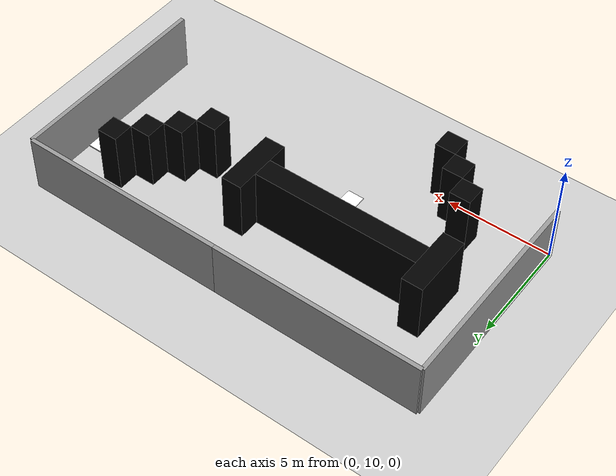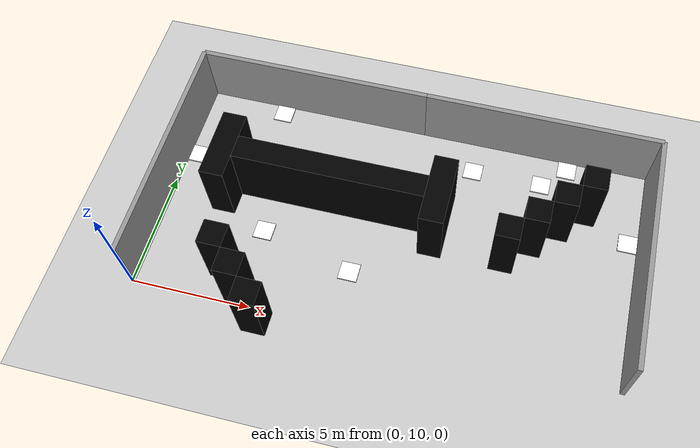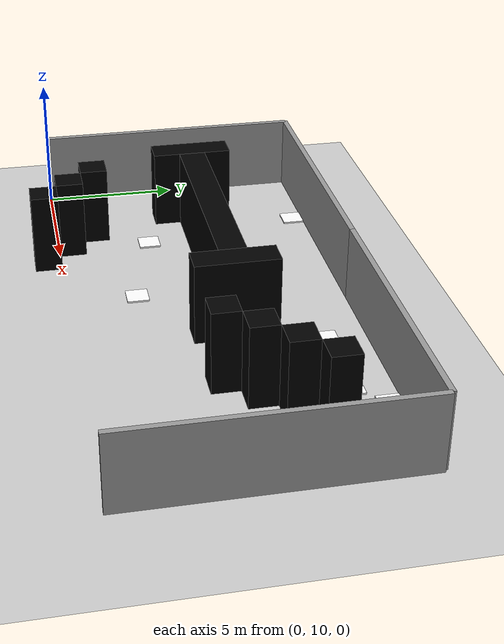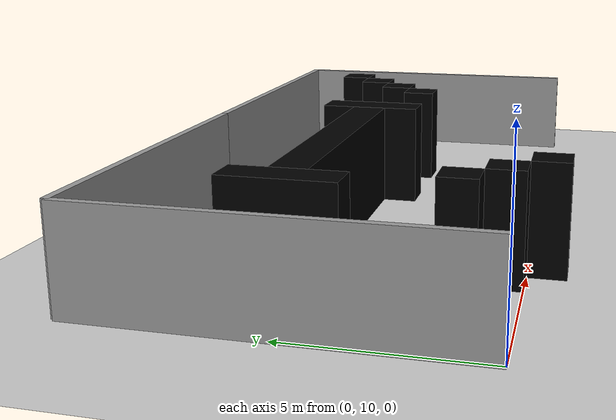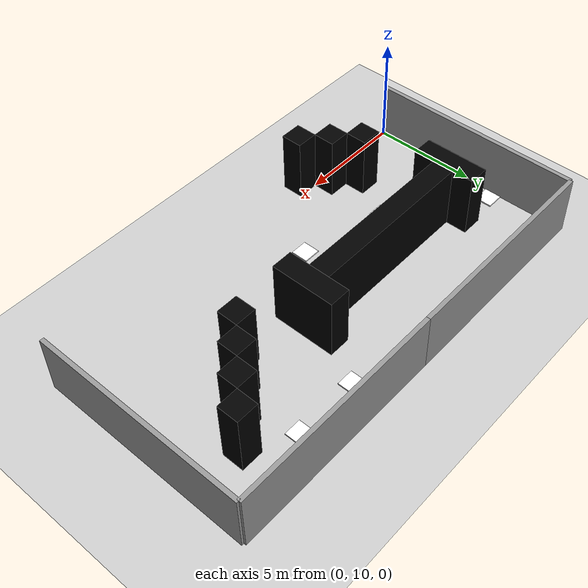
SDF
<sdf version="1.7">
 <world name="default">
  <model name="ground_plane">
   <static>1</static>
   <link name="link">
    <collision name="collision">
     <geometry><plane><normal>0 0 1</normal><size>100 100</size></plane></geometry>
     <surface><friction><ode><mu>100</mu><mu2>50</mu2></ode></friction></surface>
    </collision>
    <visual name="visual">
     <cast_shadows>0</cast_shadows>
     <geometry><plane><normal>0 0 1</normal><size>100 100</size></plane></geometry>
     <material>
      <script><uri>file://media/materials/scripts/gazebo.material</uri><name>Gazebo/Grey</name></script>
     </material>
    </visual>
   </link>
  </model>
  <model name="grey_wall_10_0">
   <link name="link">
    <pose>0 0 1.4 0 -0 0</pose>
    <inertial>
     <mass>1</mass>
     <inertia><ixx>1</ixx><ixy>0</ixy><ixz>0</ixz><iyy>1</iyy><iyz>0</iyz><izz>1</izz></inertia>
    </inertial>
    <visual name="visual">
     <cast_shadows>0</cast_shadows>
     <geometry><box><size>10 0.2 2.8</size></box></geometry>
     <material>
      <script>
       <uri>model://grey_wall/materials/scripts</uri>
       <uri>model://grey_wall/materials/textures</uri>
       <name>vrc/grey_wall</name>
      </script>
      <shader type="vertex"><normal_map>__default__</normal_map></shader>
      <ambient>1 1 1 1</ambient>
      <diffuse>1 1 1 1</diffuse>
      <specular>0 0 0 1</specular>
      <emissive>0 0 0 1</emissive>
     </material>
    </visual>
    <collision name="collision">
     <geometry><box><size>10 0.2 2.8</size></box></geometry>
     <surface>
      <friction>
       <ode><mu>1</mu><mu2>1</mu2><fdir1>0 0 0</fdir1><slip1>0</slip1><slip2>0</slip2></ode>
       <torsional>
        <coefficient>1</coefficient>
        <patch_radius>0</patch_radius>
        <surface_radius>0</surface_radius>
        <use_patch_radius>1</use_patch_radius>
        <ode><slip>0</slip></ode>
       </torsional>
      </friction>
      <bounce><restitution_coefficient>0</restitution_coefficient><threshold>1e+06</threshold></bounce>
      <contact>
       <collide_without_contact>0</collide_without_contact>
       <collide_without_contact_bitmask>1</collide_without_contact_bitmask>
       <collide_bitmask>1</collide_bitmask>
       <ode>
        <soft_cfm>0</soft_cfm>
        <soft_erp>0.2</soft_erp>
        <kp>1e+13</kp>
        <kd>1</kd>
        <max_vel>0.01</max_vel>
        <min_depth>0</min_depth>
       </ode>
       <bullet>
        <split_impulse>1</split_impulse>
        <split_impulse_penetration_threshold>-0.01</split_impulse_penetration_threshold>
        <soft_cfm>0</soft_cfm>
        <soft_erp>0.2</soft_erp>
        <kp>1e+13</kp>
        <kd>1</kd>
       </bullet>
      </contact>
     </surface>
    </collision>
   </link>
   <static>1</static>
   <pose>15 20 0 0 -0 0</pose>
  </model>
  <model name="grey_wall_10_4">
   <link name="link">
    <pose>0 0 1.4 0 -0 0</pose>
    <inertial>
     <mass>1</mass>
     <inertia><ixx>1</ixx><ixy>0</ixy><ixz>0</ixz><iyy>1</iyy><iyz>0</iyz><izz>1</izz></inertia>
    </inertial>
    <visual name="visual">
     <cast_shadows>0</cast_shadows>
     <geometry><box><size>10 0.2 2.8</size></box></geometry>
     <material>
      <script>
       <uri>model://grey_wall/materials/scripts</uri>
       <uri>model://grey_wall/materials/textures</uri>
       <name>vrc/grey_wall</name>
      </script>
      <shader type="vertex"><normal_map>__default__</normal_map></shader>
      <ambient>1 1 1 1</ambient>
      <diffuse>1 1 1 1</diffuse>
      <specular>0 0 0 1</specular>
      <emissive>0 0 0 1</emissive>
     </material>
    </visual>
    <collision name="collision">
     <geometry><box><size>10 0.2 2.8</size></box></geometry>
     <surface>
      <friction>
       <ode><mu>1</mu><mu2>1</mu2><fdir1>0 0 0</fdir1><slip1>0</slip1><slip2>0</slip2></ode>
       <torsional>
        <coefficient>1</coefficient>
        <patch_radius>0</patch_radius>
        <surface_radius>0</surface_radius>
        <use_patch_radius>1</use_patch_radius>
        <ode><slip>0</slip></ode>
       </torsional>
      </friction>
      <bounce><restitution_coefficient>0</restitution_coefficient><threshold>1e+06</threshold></bounce>
      <contact>
       <collide_without_contact>0</collide_without_contact>
       <collide_without_contact_bitmask>1</collide_without_contact_bitmask>
       <collide_bitmask>1</collide_bitmask>
       <ode>
        <soft_cfm>0</soft_cfm>
        <soft_erp>0.2</soft_erp>
        <kp>1e+13</kp>
        <kd>1</kd>
        <max_vel>0.01</max_vel>
        <min_depth>0</min_depth>
       </ode>
       <bullet>
        <split_impulse>1</split_impulse>
        <split_impulse_penetration_threshold>-0.01</split_impulse_penetration_threshold>
        <soft_cfm>0</soft_cfm>
        <soft_erp>0.2</soft_erp>
        <kp>1e+13</kp>
        <kd>1</kd>
       </bullet>
      </contact>
     </surface>
    </collision>
   </link>
   <static>1</static>
   <pose>0 15 0 0 -0 1.57</pose>
  </model>
  <model name="grey_wall_10_5">
   <link name="link">
    <pose>0 0 1.4 0 -0 0</pose>
    <inertial>
     <mass>1</mass>
     <inertia><ixx>1</ixx><ixy>0</ixy><ixz>0</ixz><iyy>1</iyy><iyz>0</iyz><izz>1</izz></inertia>
    </inertial>
    <visual name="visual">
     <cast_shadows>0</cast_shadows>
     <geometry><box><size>10 0.2 2.8</size></box></geometry>
     <material>
      <script>
       <uri>model://grey_wall/materials/scripts</uri>
       <uri>model://grey_wall/materials/textures</uri>
       <name>vrc/grey_wall</name>
      </script>
      <shader type="vertex"><normal_map>__default__</normal_map></shader>
      <ambient>1 1 1 1</ambient>
      <diffuse>1 1 1 1</diffuse>
      <specular>0 0 0 1</specular>
      <emissive>0 0 0 1</emissive>
     </material>
    </visual>
    <collision name="collision">
     <geometry><box><size>10 0.2 2.8</size></box></geometry>
     <surface>
      <friction>
       <ode><mu>1</mu><mu2>1</mu2><fdir1>0 0 0</fdir1><slip1>0</slip1><slip2>0</slip2></ode>
       <torsional>
        <coefficient>1</coefficient>
        <patch_radius>0</patch_radius>
        <surface_radius>0</surface_radius>
        <use_patch_radius>1</use_patch_radius>
        <ode><slip>0</slip></ode>
       </torsional>
      </friction>
      <bounce><restitution_coefficient>0</restitution_coefficient><threshold>1e+06</threshold></bounce>
      <contact>
       <collide_without_contact>0</collide_without_contact>
       <collide_without_contact_bitmask>1</collide_without_contact_bitmask>
       <collide_bitmask>1</collide_bitmask>
       <ode>
        <soft_cfm>0</soft_cfm>
        <soft_erp>0.2</soft_erp>
        <kp>1e+13</kp>
        <kd>1</kd>
        <max_vel>0.01</max_vel>
        <min_depth>0</min_depth>
       </ode>
       <bullet>
        <split_impulse>1</split_impulse>
        <split_impulse_penetration_threshold>-0.01</split_impulse_penetration_threshold>
        <soft_cfm>0</soft_cfm>
        <soft_erp>0.2</soft_erp>
        <kp>1e+13</kp>
        <kd>1</kd>
       </bullet>
      </contact>
     </surface>
    </collision>
   </link>
   <static>1</static>
   <pose>20 15 0 0 -0 1.57</pose>
  </model>
  <model name="grey_wall_10_6">
   <link name="link">
    <pose>0 0 1.4 0 -0 0</pose>
    <inertial>
     <mass>1</mass>
     <inertia><ixx>1</ixx><ixy>0</ixy><ixz>0</ixz><iyy>1</iyy><iyz>0</iyz><izz>1</izz></inertia>
    </inertial>
    <visual name="visual">
     <cast_shadows>0</cast_shadows>
     <geometry><box><size>10 0.2 2.8</size></box></geometry>
     <material>
      <script>
       <uri>model://grey_wall/materials/scripts</uri>
       <uri>model://grey_wall/materials/textures</uri>
       <name>vrc/grey_wall</name>
      </script>
      <shader type="vertex"><normal_map>__default__</normal_map></shader>
      <ambient>1 1 1 1</ambient>
      <diffuse>1 1 1 1</diffuse>
      <specular>0 0 0 1</specular>
      <emissive>0 0 0 1</emissive>
     </material>
    </visual>
    <collision name="collision">
     <geometry><box><size>10 0.2 2.8</size></box></geometry>
     <surface>
      <friction>
       <ode><mu>1</mu><mu2>1</mu2><fdir1>0 0 0</fdir1><slip1>0</slip1><slip2>0</slip2></ode>
       <torsional>
        <coefficient>1</coefficient>
        <patch_radius>0</patch_radius>
        <surface_radius>0</surface_radius>
        <use_patch_radius>1</use_patch_radius>
        <ode><slip>0</slip></ode>
       </torsional>
      </friction>
      <bounce><restitution_coefficient>0</restitution_coefficient><threshold>1e+06</threshold></bounce>
      <contact>
       <collide_without_contact>0</collide_without_contact>
       <collide_without_contact_bitmask>1</collide_without_contact_bitmask>
       <collide_bitmask>1</collide_bitmask>
       <ode>
        <soft_cfm>0</soft_cfm>
        <soft_erp>0.2</soft_erp>
        <kp>1e+13</kp>
        <kd>1</kd>
        <max_vel>0.01</max_vel>
        <min_depth>0</min_depth>
       </ode>
       <bullet>
        <split_impulse>1</split_impulse>
        <split_impulse_penetration_threshold>-0.01</split_impulse_penetration_threshold>
        <soft_cfm>0</soft_cfm>
        <soft_erp>0.2</soft_erp>
        <kp>1e+13</kp>
        <kd>1</kd>
       </bullet>
      </contact>
     </surface>
    </collision>
   </link>
   <static>1</static>
   <pose>5 20 0 0 -0 0</pose>
  </model>
  <model name="brick_box_8x1_b_1">
   <link name="chassis">
    <pose>0 0 1.5 0 -0 0</pose>
    <inertial>
     <mass>1</mass>
     <inertia><ixx>1</ixx><ixy>0</ixy><ixz>0</ixz><iyy>1</iyy><iyz>0</iyz><izz>1</izz></inertia>
    </inertial>
    <visual name="visual">
     <geometry><mesh><uri>model://brick_box_3x1x3/meshes/simple_box.dae</uri><scale>8 1 3</scale></mesh></geometry>
     <material>
      <script>
       <uri>model://brick_box_3x1x3/materials/scripts</uri>
       <uri>model://brick_box_3x1x3/materials/textures</uri>
       <name>BrickBox/Diffuse</name>
      </script>
      <shader type="vertex"><normal_map>__default__</normal_map></shader>
      <ambient>0 0 0 1</ambient>
      <diffuse>0 0 0 1</diffuse>
      <specular>0 0 0 1</specular>
      <emissive>0 0 0 1</emissive>
      <lighting>1</lighting>
     </material>
    </visual>
    <collision name="collision">
     <geometry><box><size>8 1 3</size></box></geometry>
     <surface>
      <friction>
       <ode><mu>1</mu><mu2>1</mu2><fdir1>0 0 0</fdir1><slip1>0</slip1><slip2>0</slip2></ode>
       <torsional>
        <coefficient>1</coefficient>
        <patch_radius>0</patch_radius>
        <surface_radius>0</surface_radius>
        <use_patch_radius>1</use_patch_radius>
        <ode><slip>0</slip></ode>
       </torsional>
      </friction>
      <bounce><restitution_coefficient>0</restitution_coefficient><threshold>1e+06</threshold></bounce>
      <contact>
       <collide_without_contact>0</collide_without_contact>
       <collide_without_contact_bitmask>1</collide_without_contact_bitmask>
       <collide_bitmask>1</collide_bitmask>
       <ode>
        <soft_cfm>0</soft_cfm>
        <soft_erp>0.2</soft_erp>
        <kp>1e+13</kp>
        <kd>1</kd>
        <max_vel>0.01</max_vel>
        <min_depth>0</min_depth>
       </ode>
       <bullet>
        <split_impulse>1</split_impulse>
        <split_impulse_penetration_threshold>-0.01</split_impulse_penetration_threshold>
        <soft_cfm>0</soft_cfm>
        <soft_erp>0.2</soft_erp>
        <kp>1e+13</kp>
        <kd>1</kd>
       </bullet>
      </contact>
     </surface>
    </collision>
   </link>
   <static>1</static>
   <pose>7 15.5 0 0 -0 0</pose>
  </model>
  <model name="brick_box_3x1x3_black">
   <link name="chassis">
    <pose>0 0 1.5 0 -0 0</pose>
    <inertial>
     <mass>1</mass>
     <inertia><ixx>1</ixx><ixy>0</ixy><ixz>0</ixz><iyy>1</iyy><iyz>0</iyz><izz>1</izz></inertia>
    </inertial>
    <visual name="visual">
     <geometry><mesh><uri>model://brick_box_3x1x3/meshes/simple_box.dae</uri><scale>3 1 3</scale></mesh></geometry>
     <material>
      <script>
       <uri>model://brick_box_3x1x3/materials/scripts</uri>
       <uri>model://brick_box_3x1x3/materials/textures</uri>
       <name>BrickBox/Diffuse</name>
      </script>
      <shader type="vertex"><normal_map>__default__</normal_map></shader>
      <ambient>0 0 0 1</ambient>
      <diffuse>0 0 0 1</diffuse>
      <specular>0 0 0 1</specular>
      <emissive>0 0 0 1</emissive>
      <lighting>1</lighting>
     </material>
    </visual>
    <collision name="collision">
     <geometry><box><size>3 1 3</size></box></geometry>
     <surface>
      <friction>
       <ode><mu>1</mu><mu2>1</mu2><fdir1>0 0 0</fdir1><slip1>0</slip1><slip2>0</slip2></ode>
       <torsional>
        <coefficient>1</coefficient>
        <patch_radius>0</patch_radius>
        <surface_radius>0</surface_radius>
        <use_patch_radius>1</use_patch_radius>
        <ode><slip>0</slip></ode>
       </torsional>
      </friction>
      <bounce><restitution_coefficient>0</restitution_coefficient><threshold>1e+06</threshold></bounce>
      <contact>
       <collide_without_contact>0</collide_without_contact>
       <collide_without_contact_bitmask>1</collide_without_contact_bitmask>
       <collide_bitmask>1</collide_bitmask>
       <ode>
        <soft_cfm>0</soft_cfm>
        <soft_erp>0.2</soft_erp>
        <kp>1e+13</kp>
        <kd>1</kd>
        <max_vel>0.01</max_vel>
        <min_depth>0</min_depth>
       </ode>
       <bullet>
        <split_impulse>1</split_impulse>
        <split_impulse_penetration_threshold>-0.01</split_impulse_penetration_threshold>
        <soft_cfm>0</soft_cfm>
        <soft_erp>0.2</soft_erp>
        <kp>1e+13</kp>
        <kd>1</kd>
       </bullet>
      </contact>
     </surface>
    </collision>
   </link>
   <static>1</static>
   <pose>2.5 15.5 0 0 -0 1.57</pose>
  </model>
  <model name="brick_box_3x1x3_black_0">
   <link name="chassis">
    <pose>0 0 1.5 0 -0 0</pose>
    <inertial>
     <mass>1</mass>
     <inertia><ixx>1</ixx><ixy>0</ixy><ixz>0</ixz><iyy>1</iyy><iyz>0</iyz><izz>1</izz></inertia>
    </inertial>
    <visual name="visual">
     <geometry><mesh><uri>model://brick_box_3x1x3/meshes/simple_box.dae</uri><scale>3 1 3</scale></mesh></geometry>
     <material>
      <script>
       <uri>model://brick_box_3x1x3/materials/scripts</uri>
       <uri>model://brick_box_3x1x3/materials/textures</uri>
       <name>BrickBox/Diffuse</name>
      </script>
      <shader type="vertex"><normal_map>__default__</normal_map></shader>
      <ambient>0 0 0 1</ambient>
      <diffuse>0 0 0 1</diffuse>
      <specular>0 0 0 1</specular>
      <emissive>0 0 0 1</emissive>
      <lighting>1</lighting>
     </material>
    </visual>
    <collision name="collision">
     <geometry><box><size>3 1 3</size></box></geometry>
     <surface>
      <friction>
       <ode><mu>1</mu><mu2>1</mu2><fdir1>0 0 0</fdir1><slip1>0</slip1><slip2>0</slip2></ode>
       <torsional>
        <coefficient>1</coefficient>
        <patch_radius>0</patch_radius>
        <surface_radius>0</surface_radius>
        <use_patch_radius>1</use_patch_radius>
        <ode><slip>0</slip></ode>
       </torsional>
      </friction>
      <bounce><restitution_coefficient>0</restitution_coefficient><threshold>1e+06</threshold></bounce>
      <contact>
       <collide_without_contact>0</collide_without_contact>
       <collide_without_contact_bitmask>1</collide_without_contact_bitmask>
       <collide_bitmask>1</collide_bitmask>
       <ode>
        <soft_cfm>0</soft_cfm>
        <soft_erp>0.2</soft_erp>
        <kp>1e+13</kp>
        <kd>1</kd>
        <max_vel>0.01</max_vel>
        <min_depth>0</min_depth>
       </ode>
       <bullet>
        <split_impulse>1</split_impulse>
        <split_impulse_penetration_threshold>-0.01</split_impulse_penetration_threshold>
        <soft_cfm>0</soft_cfm>
        <soft_erp>0.2</soft_erp>
        <kp>1e+13</kp>
        <kd>1</kd>
       </bullet>
      </contact>
     </surface>
    </collision>
   </link>
   <static>1</static>
   <pose>11.5 15.5 0 0 -0 1.57</pose>
  </model>
  <model name="brick_box_1_B">
   <link name="chassis">
    <pose>0 0 1.5 0 -0 0</pose>
    <inertial>
     <mass>1</mass>
     <inertia><ixx>1</ixx><ixy>0</ixy><ixz>0</ixz><iyy>1</iyy><iyz>0</iyz><izz>1</izz></inertia>
    </inertial>
    <visual name="visual">
     <geometry><mesh><uri>model://brick_box_3x1x3/meshes/simple_box.dae</uri><scale>1 1 3</scale></mesh></geometry>
     <material>
      <script>
       <uri>model://brick_box_3x1x3/materials/scripts</uri>
       <uri>model://brick_box_3x1x3/materials/textures</uri>
       <name>BrickBox/Diffuse</name>
      </script>
      <shader type="vertex"><normal_map>__default__</normal_map></shader>
      <ambient>0 0 0 1</ambient>
      <diffuse>0 0 0 1</diffuse>
      <specular>0 0 0 1</specular>
      <emissive>0 0 0 1</emissive>
      <lighting>1</lighting>
     </material>
    </visual>
    <collision name="collision">
     <geometry><box><size>1 1 3</size></box></geometry>
     <surface>
      <friction>
       <ode><mu>1</mu><mu2>1</mu2><fdir1>0 0 0</fdir1><slip1>0</slip1><slip2>0</slip2></ode>
       <torsional>
        <coefficient>1</coefficient>
        <patch_radius>0</patch_radius>
        <surface_radius>0</surface_radius>
        <use_patch_radius>1</use_patch_radius>
        <ode><slip>0</slip></ode>
       </torsional>
      </friction>
      <bounce><restitution_coefficient>0</restitution_coefficient><threshold>1e+06</threshold></bounce>
      <contact>
       <collide_without_contact>0</collide_without_contact>
       <collide_without_contact_bitmask>1</collide_without_contact_bitmask>
       <collide_bitmask>1</collide_bitmask>
       <ode>
        <soft_cfm>0</soft_cfm>
        <soft_erp>0.2</soft_erp>
        <kp>1e+13</kp>
        <kd>1</kd>
        <max_vel>0.01</max_vel>
        <min_depth>0</min_depth>
       </ode>
       <bullet>
        <split_impulse>1</split_impulse>
        <split_impulse_penetration_threshold>-0.01</split_impulse_penetration_threshold>
        <soft_cfm>0</soft_cfm>
        <soft_erp>0.2</soft_erp>
        <kp>1e+13</kp>
        <kd>1</kd>
       </bullet>
      </contact>
     </surface>
    </collision>
   </link>
   <static>1</static>
   <pose>17.5 17.5 0 0 -0 0</pose>
  </model>
  <model name="brick_box_1_B_1">
   <link name="chassis">
    <pose>0 0 1.5 0 -0 0</pose>
    <inertial>
     <mass>1</mass>
     <inertia><ixx>1</ixx><ixy>0</ixy><ixz>0</ixz><iyy>1</iyy><iyz>0</iyz><izz>1</izz></inertia>
    </inertial>
    <visual name="visual">
     <geometry><mesh><uri>model://brick_box_3x1x3/meshes/simple_box.dae</uri><scale>1 1 3</scale></mesh></geometry>
     <material>
      <script>
       <uri>model://brick_box_3x1x3/materials/scripts</uri>
       <uri>model://brick_box_3x1x3/materials/textures</uri>
       <name>BrickBox/Diffuse</name>
      </script>
      <shader type="vertex"><normal_map>__default__</normal_map></shader>
      <ambient>0 0 0 1</ambient>
      <diffuse>0 0 0 1</diffuse>
      <specular>0 0 0 1</specular>
      <emissive>0 0 0 1</emissive>
      <lighting>1</lighting>
     </material>
    </visual>
    <collision name="collision">
     <geometry><box><size>1 1 3</size></box></geometry>
     <surface>
      <friction>
       <ode><mu>1</mu><mu2>1</mu2><fdir1>0 0 0</fdir1><slip1>0</slip1><slip2>0</slip2></ode>
       <torsional>
        <coefficient>1</coefficient>
        <patch_radius>0</patch_radius>
        <surface_radius>0</surface_radius>
        <use_patch_radius>1</use_patch_radius>
        <ode><slip>0</slip></ode>
       </torsional>
      </friction>
      <bounce><restitution_coefficient>0</restitution_coefficient><threshold>1e+06</threshold></bounce>
      <contact>
       <collide_without_contact>0</collide_without_contact>
       <collide_without_contact_bitmask>1</collide_without_contact_bitmask>
       <collide_bitmask>1</collide_bitmask>
       <ode>
        <soft_cfm>0</soft_cfm>
        <soft_erp>0.2</soft_erp>
        <kp>1e+13</kp>
        <kd>1</kd>
        <max_vel>0.01</max_vel>
        <min_depth>0</min_depth>
       </ode>
       <bullet>
        <split_impulse>1</split_impulse>
        <split_impulse_penetration_threshold>-0.01</split_impulse_penetration_threshold>
        <soft_cfm>0</soft_cfm>
        <soft_erp>0.2</soft_erp>
        <kp>1e+13</kp>
        <kd>1</kd>
       </bullet>
      </contact>
     </surface>
    </collision>
   </link>
   <static>1</static>
   <pose>16.5 16.5 0 0 -0 0</pose>
  </model>
  <model name="brick_box_1_B_3">
   <link name="chassis">
    <pose>0 0 1.5 0 -0 0</pose>
    <inertial>
     <mass>1</mass>
     <inertia><ixx>1</ixx><ixy>0</ixy><ixz>0</ixz><iyy>1</iyy><iyz>0</iyz><izz>1</izz></inertia>
    </inertial>
    <visual name="visual">
     <geometry><mesh><uri>model://brick_box_3x1x3/meshes/simple_box.dae</uri><scale>1 1 3</scale></mesh></geometry>
     <material>
      <script>
       <uri>model://brick_box_3x1x3/materials/scripts</uri>
       <uri>model://brick_box_3x1x3/materials/textures</uri>
       <name>BrickBox/Diffuse</name>
      </script>
      <shader type="vertex"><normal_map>__default__</normal_map></shader>
      <ambient>0 0 0 1</ambient>
      <diffuse>0 0 0 1</diffuse>
      <specular>0 0 0 1</specular>
      <emissive>0 0 0 1</emissive>
      <lighting>1</lighting>
     </material>
    </visual>
    <collision name="collision">
     <geometry><box><size>1 1 3</size></box></geometry>
     <surface>
      <friction>
       <ode><mu>1</mu><mu2>1</mu2><fdir1>0 0 0</fdir1><slip1>0</slip1><slip2>0</slip2></ode>
       <torsional>
        <coefficient>1</coefficient>
        <patch_radius>0</patch_radius>
        <surface_radius>0</surface_radius>
        <use_patch_radius>1</use_patch_radius>
        <ode><slip>0</slip></ode>
       </torsional>
      </friction>
      <bounce><restitution_coefficient>0</restitution_coefficient><threshold>1e+06</threshold></bounce>
      <contact>
       <collide_without_contact>0</collide_without_contact>
       <collide_without_contact_bitmask>1</collide_without_contact_bitmask>
       <collide_bitmask>1</collide_bitmask>
       <ode>
        <soft_cfm>0</soft_cfm>
        <soft_erp>0.2</soft_erp>
        <kp>1e+13</kp>
        <kd>1</kd>
        <max_vel>0.01</max_vel>
        <min_depth>0</min_depth>
       </ode>
       <bullet>
        <split_impulse>1</split_impulse>
        <split_impulse_penetration_threshold>-0.01</split_impulse_penetration_threshold>
        <soft_cfm>0</soft_cfm>
        <soft_erp>0.2</soft_erp>
        <kp>1e+13</kp>
        <kd>1</kd>
       </bullet>
      </contact>
     </surface>
    </collision>
   </link>
   <static>1</static>
   <pose>15.5 15.5 0 0 -0 0</pose>
  </model>
  <model name="brick_box_1_B_6">
   <link name="chassis">
    <pose>0 0 1.5 0 -0 0</pose>
    <inertial>
     <mass>1</mass>
     <inertia><ixx>1</ixx><ixy>0</ixy><ixz>0</ixz><iyy>1</iyy><iyz>0</iyz><izz>1</izz></inertia>
    </inertial>
    <visual name="visual">
     <geometry><mesh><uri>model://brick_box_3x1x3/meshes/simple_box.dae</uri><scale>1 1 3</scale></mesh></geometry>
     <material>
      <script>
       <uri>model://brick_box_3x1x3/materials/scripts</uri>
       <uri>model://brick_box_3x1x3/materials/textures</uri>
       <name>BrickBox/Diffuse</name>
      </script>
      <shader type="vertex"><normal_map>__default__</normal_map></shader>
      <ambient>0 0 0 1</ambient>
      <diffuse>0 0 0 1</diffuse>
      <specular>0 0 0 1</specular>
      <emissive>0 0 0 1</emissive>
      <lighting>1</lighting>
     </material>
    </visual>
    <collision name="collision">
     <geometry><box><size>1 1 3</size></box></geometry>
     <surface>
      <friction>
       <ode><mu>1</mu><mu2>1</mu2><fdir1>0 0 0</fdir1><slip1>0</slip1><slip2>0</slip2></ode>
       <torsional>
        <coefficient>1</coefficient>
        <patch_radius>0</patch_radius>
        <surface_radius>0</surface_radius>
        <use_patch_radius>1</use_patch_radius>
        <ode><slip>0</slip></ode>
       </torsional>
      </friction>
      <bounce><restitution_coefficient>0</restitution_coefficient><threshold>1e+06</threshold></bounce>
      <contact>
       <collide_without_contact>0</collide_without_contact>
       <collide_without_contact_bitmask>1</collide_without_contact_bitmask>
       <collide_bitmask>1</collide_bitmask>
       <ode>
        <soft_cfm>0</soft_cfm>
        <soft_erp>0.2</soft_erp>
        <kp>1e+13</kp>
        <kd>1</kd>
        <max_vel>0.01</max_vel>
        <min_depth>0</min_depth>
       </ode>
       <bullet>
        <split_impulse>1</split_impulse>
        <split_impulse_penetration_threshold>-0.01</split_impulse_penetration_threshold>
        <soft_cfm>0</soft_cfm>
        <soft_erp>0.2</soft_erp>
        <kp>1e+13</kp>
        <kd>1</kd>
       </bullet>
      </contact>
     </surface>
    </collision>
   </link>
   <static>1</static>
   <pose>14.5 14.5 0 0 -0 0</pose>
  </model>
  <model name="brick_box_1_B_7">
   <link name="chassis">
    <pose>0 0 1.5 0 -0 0</pose>
    <inertial>
     <mass>1</mass>
     <inertia><ixx>1</ixx><ixy>0</ixy><ixz>0</ixz><iyy>1</iyy><iyz>0</iyz><izz>1</izz></inertia>
    </inertial>
    <visual name="visual">
     <geometry><mesh><uri>model://brick_box_3x1x3/meshes/simple_box.dae</uri><scale>1 1 3</scale></mesh></geometry>
     <material>
      <script>
       <uri>model://brick_box_3x1x3/materials/scripts</uri>
       <uri>model://brick_box_3x1x3/materials/textures</uri>
       <name>BrickBox/Diffuse</name>
      </script>
      <shader type="vertex"><normal_map>__default__</normal_map></shader>
      <ambient>0 0 0 1</ambient>
      <diffuse>0 0 0 1</diffuse>
      <specular>0 0 0 1</specular>
      <emissive>0 0 0 1</emissive>
      <lighting>1</lighting>
     </material>
    </visual>
    <collision name="collision">
     <geometry><box><size>1 1 3</size></box></geometry>
     <surface>
      <friction>
       <ode><mu>1</mu><mu2>1</mu2><fdir1>0 0 0</fdir1><slip1>0</slip1><slip2>0</slip2></ode>
       <torsional>
        <coefficient>1</coefficient>
        <patch_radius>0</patch_radius>
        <surface_radius>0</surface_radius>
        <use_patch_radius>1</use_patch_radius>
        <ode><slip>0</slip></ode>
       </torsional>
      </friction>
      <bounce><restitution_coefficient>0</restitution_coefficient><threshold>1e+06</threshold></bounce>
      <contact>
       <collide_without_contact>0</collide_without_contact>
       <collide_without_contact_bitmask>1</collide_without_contact_bitmask>
       <collide_bitmask>1</collide_bitmask>
       <ode>
        <soft_cfm>0</soft_cfm>
        <soft_erp>0.2</soft_erp>
        <kp>1e+13</kp>
        <kd>1</kd>
        <max_vel>0.01</max_vel>
        <min_depth>0</min_depth>
       </ode>
       <bullet>
        <split_impulse>1</split_impulse>
        <split_impulse_penetration_threshold>-0.01</split_impulse_penetration_threshold>
        <soft_cfm>0</soft_cfm>
        <soft_erp>0.2</soft_erp>
        <kp>1e+13</kp>
        <kd>1</kd>
       </bullet>
      </contact>
     </surface>
    </collision>
   </link>
   <static>1</static>
   <pose>5.5 9.5 0 0 -0 0</pose>
  </model>
  <model name="brick_box_1_B_8">
   <link name="chassis">
    <pose>0 0 1.5 0 -0 0</pose>
    <inertial>
     <mass>1</mass>
     <inertia><ixx>1</ixx><ixy>0</ixy><ixz>0</ixz><iyy>1</iyy><iyz>0</iyz><izz>1</izz></inertia>
    </inertial>
    <visual name="visual">
     <geometry><mesh><uri>model://brick_box_3x1x3/meshes/simple_box.dae</uri><scale>1 1 3</scale></mesh></geometry>
     <material>
      <script>
       <uri>model://brick_box_3x1x3/materials/scripts</uri>
       <uri>model://brick_box_3x1x3/materials/textures</uri>
       <name>BrickBox/Diffuse</name>
      </script>
      <shader type="vertex"><normal_map>__default__</normal_map></shader>
      <ambient>0 0 0 1</ambient>
      <diffuse>0 0 0 1</diffuse>
      <specular>0 0 0 1</specular>
      <emissive>0 0 0 1</emissive>
      <lighting>1</lighting>
     </material>
    </visual>
    <collision name="collision">
     <geometry><box><size>1 1 3</size></box></geometry>
     <surface>
      <friction>
       <ode><mu>1</mu><mu2>1</mu2><fdir1>0 0 0</fdir1><slip1>0</slip1><slip2>0</slip2></ode>
       <torsional>
        <coefficient>1</coefficient>
        <patch_radius>0</patch_radius>
        <surface_radius>0</surface_radius>
        <use_patch_radius>1</use_patch_radius>
        <ode><slip>0</slip></ode>
       </torsional>
      </friction>
      <bounce><restitution_coefficient>0</restitution_coefficient><threshold>1e+06</threshold></bounce>
      <contact>
       <collide_without_contact>0</collide_without_contact>
       <collide_without_contact_bitmask>1</collide_without_contact_bitmask>
       <collide_bitmask>1</collide_bitmask>
       <ode>
        <soft_cfm>0</soft_cfm>
        <soft_erp>0.2</soft_erp>
        <kp>1e+13</kp>
        <kd>1</kd>
        <max_vel>0.01</max_vel>
        <min_depth>0</min_depth>
       </ode>
       <bullet>
        <split_impulse>1</split_impulse>
        <split_impulse_penetration_threshold>-0.01</split_impulse_penetration_threshold>
        <soft_cfm>0</soft_cfm>
        <soft_erp>0.2</soft_erp>
        <kp>1e+13</kp>
        <kd>1</kd>
       </bullet>
      </contact>
     </surface>
    </collision>
   </link>
   <static>1</static>
   <pose>4.5 10.5 0 0 -0 0</pose>
  </model>
  <model name="brick_box_1_B_10">
   <link name="chassis">
    <pose>0 0 1.5 0 -0 0</pose>
    <inertial>
     <mass>1</mass>
     <inertia><ixx>1</ixx><ixy>0</ixy><ixz>0</ixz><iyy>1</iyy><iyz>0</iyz><izz>1</izz></inertia>
    </inertial>
    <visual name="visual">
     <geometry><mesh><uri>model://brick_box_3x1x3/meshes/simple_box.dae</uri><scale>1 1 3</scale></mesh></geometry>
     <material>
      <script>
       <uri>model://brick_box_3x1x3/materials/scripts</uri>
       <uri>model://brick_box_3x1x3/materials/textures</uri>
       <name>BrickBox/Diffuse</name>
      </script>
      <shader type="vertex"><normal_map>__default__</normal_map></shader>
      <ambient>0 0 0 1</ambient>
      <diffuse>0 0 0 1</diffuse>
      <specular>0 0 0 1</specular>
      <emissive>0 0 0 1</emissive>
      <lighting>1</lighting>
     </material>
    </visual>
    <collision name="collision">
     <geometry><box><size>1 1 3</size></box></geometry>
     <surface>
      <friction>
       <ode><mu>1</mu><mu2>1</mu2><fdir1>0 0 0</fdir1><slip1>0</slip1><slip2>0</slip2></ode>
       <torsional>
        <coefficient>1</coefficient>
        <patch_radius>0</patch_radius>
        <surface_radius>0</surface_radius>
        <use_patch_radius>1</use_patch_radius>
        <ode><slip>0</slip></ode>
       </torsional>
      </friction>
      <bounce><restitution_coefficient>0</restitution_coefficient><threshold>1e+06</threshold></bounce>
      <contact>
       <collide_without_contact>0</collide_without_contact>
       <collide_without_contact_bitmask>1</collide_without_contact_bitmask>
       <collide_bitmask>1</collide_bitmask>
       <ode>
        <soft_cfm>0</soft_cfm>
        <soft_erp>0.2</soft_erp>
        <kp>1e+13</kp>
        <kd>1</kd>
        <max_vel>0.01</max_vel>
        <min_depth>0</min_depth>
       </ode>
       <bullet>
        <split_impulse>1</split_impulse>
        <split_impulse_penetration_threshold>-0.01</split_impulse_penetration_threshold>
        <soft_cfm>0</soft_cfm>
        <soft_erp>0.2</soft_erp>
        <kp>1e+13</kp>
        <kd>1</kd>
       </bullet>
      </contact>
     </surface>
    </collision>
   </link>
   <static>1</static>
   <pose>3.5 11.5 0 0 -0 0</pose>
  </model>
  <model name="number1_short_clone_0">
   <link name="link">
    <inertial>
     <mass>1</mass>
     <inertia><ixx>1</ixx><ixy>0</ixy><ixz>0</ixz><iyy>1</iyy><iyz>0</iyz><izz>1</izz></inertia>
    </inertial>
    <visual name="visual">
     <geometry><mesh><uri>model://number1/meshes/number.dae</uri><scale>1 1 0.1</scale></mesh></geometry>
     <material>
      <script>
       <uri>model://number1/materials/scripts</uri>
       <uri>model://number1/materials/textures</uri>
       <name>Number/One</name>
      </script>
      <shader type="vertex"><normal_map>__default__</normal_map></shader>
      <ambient>1 1 1 1</ambient>
      <diffuse>1 1 1 1</diffuse>
      <specular>0 0 0 1</specular>
      <emissive>0 0 0 1</emissive>
     </material>
    </visual>
   </link>
   <static>1</static>
   <pose>19.5 16.5 0 0 -0 3.14</pose>
  </model>
  <model name="number1_short_clone_1">
   <link name="link">
    <inertial>
     <mass>1</mass>
     <inertia><ixx>1</ixx><ixy>0</ixy><ixz>0</ixz><iyy>1</iyy><iyz>0</iyz><izz>1</izz></inertia>
    </inertial>
    <visual name="visual">
     <geometry><mesh><uri>model://number1/meshes/number.dae</uri><scale>1 1 0.1</scale></mesh></geometry>
     <material>
      <script>
       <uri>model://number1/materials/scripts</uri>
       <uri>model://number1/materials/textures</uri>
       <name>Number/One</name>
      </script>
      <shader type="vertex"><normal_map>__default__</normal_map></shader>
      <ambient>1 1 1 1</ambient>
      <diffuse>1 1 1 1</diffuse>
      <specular>0 0 0 1</specular>
      <emissive>0 0 0 1</emissive>
     </material>
    </visual>
   </link>
   <static>1</static>
   <pose>16.5 19.5 0 0 -0 3.14</pose>
  </model>
  <model name="number1_short_clone_4">
   <link name="link">
    <inertial>
     <mass>1</mass>
     <inertia><ixx>1</ixx><ixy>0</ixy><ixz>0</ixz><iyy>1</iyy><iyz>0</iyz><izz>1</izz></inertia>
    </inertial>
    <visual name="visual">
     <geometry><mesh><uri>model://number1/meshes/number.dae</uri><scale>1 1 0.1</scale></mesh></geometry>
     <material>
      <script>
       <uri>model://number1/materials/scripts</uri>
       <uri>model://number1/materials/textures</uri>
       <name>Number/One</name>
      </script>
      <shader type="vertex"><normal_map>__default__</normal_map></shader>
      <ambient>1 1 1 1</ambient>
      <diffuse>1 1 1 1</diffuse>
      <specular>0 0 0 1</specular>
      <emissive>0 0 0 1</emissive>
     </material>
    </visual>
   </link>
   <static>1</static>
   <pose>3.5 19.5 0 0 -0 3.14</pose>
  </model>
  <model name="number1_short_clone_5">
   <link name="link">
    <inertial>
     <mass>1</mass>
     <inertia><ixx>1</ixx><ixy>0</ixy><ixz>0</ixz><iyy>1</iyy><iyz>0</iyz><izz>1</izz></inertia>
    </inertial>
    <visual name="visual">
     <geometry><mesh><uri>model://number1/meshes/number.dae</uri><scale>1 1 0.1</scale></mesh></geometry>
     <material>
      <script>
       <uri>model://number1/materials/scripts</uri>
       <uri>model://number1/materials/textures</uri>
       <name>Number/One</name>
      </script>
      <shader type="vertex"><normal_map>__default__</normal_map></shader>
      <ambient>1 1 1 1</ambient>
      <diffuse>1 1 1 1</diffuse>
      <specular>0 0 0 1</specular>
      <emissive>0 0 0 1</emissive>
     </material>
    </visual>
   </link>
   <static>1</static>
   <pose>0.5 16.5 0 0 -0 3.14</pose>
  </model>
  <model name="number4_short">
   <link name="link">
    <inertial>
     <mass>1</mass>
     <inertia><ixx>1</ixx><ixy>0</ixy><ixz>0</ixz><iyy>1</iyy><iyz>0</iyz><izz>1</izz></inertia>
    </inertial>
    <visual name="visual">
     <geometry><mesh><uri>model://number1/meshes/number.dae</uri><scale>1 1 0.1</scale></mesh></geometry>
     <material>
      <script>
       <uri>model://number4/materials/scripts</uri>
       <uri>model://number4/materials/textures</uri>
       <name>Number/Four</name>
      </script>
      <shader type="pixel"><normal_map>__default__</normal_map></shader>
      <ambient>1 1 1 1</ambient>
      <diffuse>1 1 1 1</diffuse>
      <specular>0 0 0 1</specular>
      <emissive>0 0 0 1</emissive>
     </material>
    </visual>
   </link>
   <static>1</static>
   <pose>8.5 12.5 0 0 -0 3.14</pose>
  </model>
  <model name="number2_short_1">
   <link name="link">
    <inertial>
     <mass>1</mass>
     <inertia><ixx>1</ixx><ixy>0</ixy><ixz>0</ixz><iyy>1</iyy><iyz>0</iyz><izz>1</izz></inertia>
    </inertial>
    <visual name="visual">
     <geometry><mesh><uri>model://number1/meshes/number.dae</uri><scale>1 1 0.1</scale></mesh></geometry>
     <material>
      <script>
       <uri>model://number2/materials/scripts</uri>
       <uri>model://number2/materials/textures</uri>
       <name>Number/Two</name>
      </script>
      <shader type="pixel"><normal_map>__default__</normal_map></shader>
      <ambient>1 1 1 1</ambient>
      <diffuse>1 1 1 1</diffuse>
      <specular>0 0 0 1</specular>
      <emissive>0 0 0 1</emissive>
     </material>
    </visual>
   </link>
   <static>1</static>
   <pose>12.5 18.5 0 0 -0 3.14</pose>
  </model>
  <model name="number2_short_1_clone">
   <link name="link">
    <inertial>
     <mass>1</mass>
     <inertia><ixx>1</ixx><ixy>0</ixy><ixz>0</ixz><iyy>1</iyy><iyz>0</iyz><izz>1</izz></inertia>
    </inertial>
    <visual name="visual">
     <geometry><mesh><uri>model://number1/meshes/number.dae</uri><scale>1 1 0.1</scale></mesh></geometry>
     <material>
      <script>
       <uri>model://number2/materials/scripts</uri>
       <uri>model://number2/materials/textures</uri>
       <name>Number/Two</name>
      </script>
      <shader type="pixel"><normal_map>__default__</normal_map></shader>
      <ambient>1 1 1 1</ambient>
      <diffuse>1 1 1 1</diffuse>
      <specular>0 0 0 1</specular>
      <emissive>0 0 0 1</emissive>
     </material>
    </visual>
   </link>
   <static>1</static>
   <pose>15.5 18.5 0 0 -0 3.14</pose>
  </model>
  <model name="number4_short_clone">
   <link name="link">
    <inertial>
     <mass>1</mass>
     <inertia><ixx>1</ixx><ixy>0</ixy><ixz>0</ixz><iyy>1</iyy><iyz>0</iyz><izz>1</izz></inertia>
    </inertial>
    <visual name="visual">
     <geometry><mesh><uri>model://number1/meshes/number.dae</uri><scale>1 1 0.1</scale></mesh></geometry>
     <material>
      <script>
       <uri>model://number4/materials/scripts</uri>
       <uri>model://number4/materials/textures</uri>
       <name>Number/Four</name>
      </script>
      <shader type="pixel"><normal_map>__default__</normal_map></shader>
      <ambient>1 1 1 1</ambient>
      <diffuse>1 1 1 1</diffuse>
      <specular>0 0 0 1</specular>
      <emissive>0 0 0 1</emissive>
     </material>
    </visual>
   </link>
   <static>1</static>
   <pose>4.5 13.5 0 0 -0 3.14</pose>
  </model>
 </world>
</sdf>
